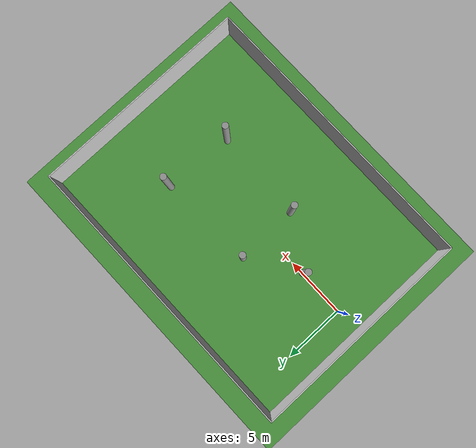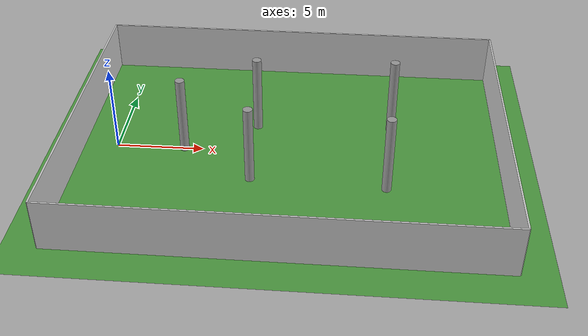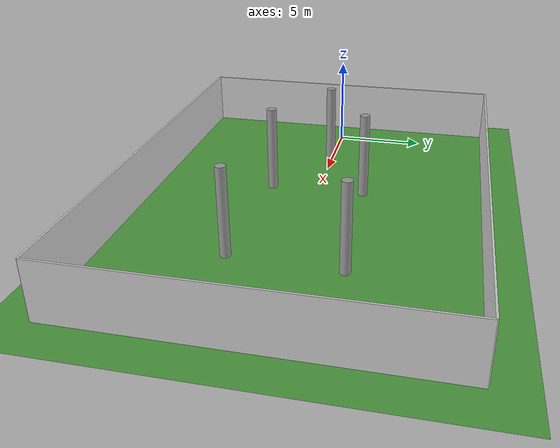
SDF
<sdf version="1.7">
 <world name="grass_enclosed_world">
  <light name="sun" type="directional">
   <pose>0 0 10 0 -0 0</pose>
   <diffuse>0.8 0.8 0.8 1</diffuse>
   <specular>0.2 0.2 0.2 1</specular>
   <attenuation>
    <range>1000</range>
    <constant>0.9</constant>
    <linear>0.01</linear>
    <quadratic>0.001</quadratic>
   </attenuation>
   <direction>-0.5 0.1 -0.9</direction>
   <spot><inner_angle>0</inner_angle><outer_angle>0</outer_angle><falloff>0</falloff></spot>
  </light>
  <model name="ground_plane">
   <static>1</static>
   <link name="link">
    <collision name="collision">
     <geometry><plane><normal>0 0 1</normal><size>50 50</size></plane></geometry>
     <surface><friction><ode><mu>100</mu><mu2>50</mu2></ode></friction></surface>
    </collision>
    <visual name="visual">
     <geometry><plane><normal>0 0 1</normal><size>50 50</size></plane></geometry>
     <material>
      <script><uri>file://media/materials/scripts/gazebo.material</uri><name>Gazebo/Grass</name></script>
     </material>
    </visual>
   </link>
  </model>
  <model name="wall_x_positive">
   <static>1</static>
   <pose>10 9 1.5 0 -0 0</pose>
   <link name="link">
    <collision name="collision"><geometry><box><size>24 0.1 3</size></box></geometry></collision>
    <visual name="visual">
     <geometry><box><size>24 0.1 3</size></box></geometry>
     <material><ambient>0.8 0.8 0.8 1</ambient></material>
    </visual>
   </link>
  </model>
  <model name="wall_x_negative">
   <static>1</static>
   <pose>10 -9 1.5 0 -0 0</pose>
   <link name="link">
    <collision name="collision"><geometry><box><size>24 0.1 3</size></box></geometry></collision>
    <visual name="visual">
     <geometry><box><size>24 0.1 3</size></box></geometry>
     <material><ambient>0.8 0.8 0.8 1</ambient></material>
    </visual>
   </link>
  </model>
  <model name="wall_y_positive">
   <static>1</static>
   <pose>22 0 1.5 0 -0 0</pose>
   <link name="link">
    <collision name="collision"><geometry><box><size>0.1 18 3</size></box></geometry></collision>
    <visual name="visual">
     <geometry><box><size>0.1 18 3</size></box></geometry>
     <material><ambient>0.8 0.8 0.8 1</ambient></material>
    </visual>
   </link>
  </model>
  <model name="wall_y_negative">
   <static>1</static>
   <pose>-2 0 1.5 0 -0 0</pose>
   <link name="link">
    <collision name="collision"><geometry><box><size>0.1 18 3</size></box></geometry></collision>
    <visual name="visual">
     <geometry><box><size>0.1 18 3</size></box></geometry>
     <material><ambient>0.8 0.8 0.8 1</ambient></material>
    </visual>
   </link>
  </model>
  <model name="oak_tree">
   <pose>6.13619 -4.17728 -2.27218e+06 0 -0 0</pose>
   <link name="link">
    <pose>6.13621 -4.17728 0 0 -0 0</pose>
    <inertial>
     <inertia><ixx>1</ixx><ixy>0</ixy><ixz>0</ixz><iyy>1</iyy><iyz>0</iyz><izz>1</izz></inertia>
     <mass>1</mass>
    </inertial>
    <velocity>0 0 0 0 -0 0</velocity>
    <acceleration>0 0 0 0 -0 0</acceleration>
    <wrench>0 0 0 0 -0 0</wrench>
   </link>
   <scale>1 1 1</scale>
  </model>
  <model name="pine_tree">
   <pose>3.69007 2.61013 -2.27218e+06 0 -0 0</pose>
   <link name="link">
    <pose>3.69007 2.61013 0 0 -0 0</pose>
    <inertial>
     <inertia><ixx>1</ixx><ixy>0</ixy><ixz>0</ixz><iyy>1</iyy><iyz>0</iyz><izz>1</izz></inertia>
     <mass>1</mass>
    </inertial>
    <velocity>0 0 0 0 -0 0</velocity>
    <acceleration>0 0 0 0 -0 0</acceleration>
    <wrench>0 0 0 0 -0 0</wrench>
   </link>
   <scale>1 1 1</scale>
  </model>
  <model name="pine_tree_0">
   <pose>5.15015 5.3415 -2.27218e+06 0 -0 0</pose>
   <link name="link">
    <pose>5.15015 5.3415 0 0 -0 0</pose>
    <inertial>
     <inertia><ixx>1</ixx><ixy>0</ixy><ixz>0</ixz><iyy>1</iyy><iyz>0</iyz><izz>1</izz></inertia>
     <mass>1</mass>
    </inertial>
    <velocity>0 0 0 0 -0 0</velocity>
    <acceleration>0 0 0 0 -0 0</acceleration>
    <wrench>0 0 0 0 -0 0</wrench>
   </link>
   <scale>1 1 1</scale>
  </model>
  <model name="pine_tree_1">
   <pose>8.01584 3.60971 -2.27218e+06 0 -0 0</pose>
   <link name="link">
    <pose>8.01586 3.60971 0 0 -0 0</pose>
    <inertial>
     <inertia><ixx>1</ixx><ixy>0</ixy><ixz>0</ixz><iyy>1</iyy><iyz>0</iyz><izz>1</izz></inertia>
     <mass>1</mass>
    </inertial>
    <velocity>0 0 0 0 -0 0</velocity>
    <acceleration>0 0 0 0 -0 0</acceleration>
    <wrench>0 0 0 0 -0 0</wrench>
   </link>
   <scale>1 1 1</scale>
  </model>
  <model name="pine_tree_2">
   <pose>9.61175 6.59911 -2.27218e+06 0 -0 0</pose>
   <link name="link">
    <pose>9.61175 6.59909 0 0 -0 0</pose>
    <inertial>
     <inertia><ixx>1</ixx><ixy>0</ixy><ixz>0</ixz><iyy>1</iyy><iyz>0</iyz><izz>1</izz></inertia>
     <mass>1</mass>
    </inertial>
    <velocity>0 0 0 0 -0 0</velocity>
    <acceleration>0 0 0 0 -0 0</acceleration>
    <wrench>0 0 0 0 -0 0</wrench>
   </link>
   <scale>1 1 1</scale>
  </model>
  <model name="pine_tree_3">
   <pose>10.2263 0.508351 -2.27218e+06 0 -0 0</pose>
   <link name="link">
    <pose>10.2263 0.508349 0 0 -0 0</pose>
    <inertial>
     <inertia><ixx>1</ixx><ixy>0</ixy><ixz>0</ixz><iyy>1</iyy><iyz>0</iyz><izz>1</izz></inertia>
     <mass>1</mass>
    </inertial>
    <velocity>0 0 0 0 -0 0</velocity>
    <acceleration>0 0 0 0 -0 0</acceleration>
    <wrench>0 0 0 0 -0 0</wrench>
   </link>
   <scale>1 1 1</scale>
  </model>
  <model name="pine_tree_4">
   <pose>12.4557 3.75801 -2.27218e+06 0 -0 0</pose>
   <link name="link">
    <pose>12.4557 3.75801 0 0 -0 0</pose>
    <inertial>
     <inertia><ixx>1</ixx><ixy>0</ixy><ixz>0</ixz><iyy>1</iyy><iyz>0</iyz><izz>1</izz></inertia>
     <mass>1</mass>
    </inertial>
    <velocity>0 0 0 0 -0 0</velocity>
    <acceleration>0 0 0 0 -0 0</acceleration>
    <wrench>0 0 0 0 -0 0</wrench>
   </link>
   <scale>1 1 1</scale>
  </model>
  <model name="pine_tree_5">
   <pose>16.6246 3.93043 -2.27218e+06 0 -0 0</pose>
   <link name="link">
    <pose>16.6246 3.93043 0 0 -0 0</pose>
    <inertial>
     <inertia><ixx>1</ixx><ixy>0</ixy><ixz>0</ixz><iyy>1</iyy><iyz>0</iyz><izz>1</izz></inertia>
     <mass>1</mass>
    </inertial>
    <velocity>0 0 0 0 -0 0</velocity>
    <acceleration>0 0 0 0 -0 0</acceleration>
    <wrench>0 0 0 0 -0 0</wrench>
   </link>
   <scale>1 1 1</scale>
  </model>
  <model name="thrift_shop">
   <pose>16.4126 -2.7605 -2.27218e+06 0 -0 0</pose>
   <link name="link">
    <pose>16.4126 -2.7605 0 0 -0 0</pose>
    <inertial>
     <inertia><ixx>1</ixx><ixy>0</ixy><ixz>0</ixz><iyy>1</iyy><iyz>0</iyz><izz>1</izz></inertia>
     <mass>1</mass>
    </inertial>
    <velocity>0 0 0 0 -0 0</velocity>
    <acceleration>0 0 0 0 -0 0</acceleration>
    <wrench>0 0 0 0 -0 0</wrench>
   </link>
   <scale>1 1 1</scale>
  </model>
  <physics type="ode">
   <max_step_size>0.001</max_step_size>
   <real_time_factor>1</real_time_factor>
   <real_time_update_rate>1000</real_time_update_rate>
   <gravity>0 0 -9.8</gravity>
  </physics>
  <gravity>0 0 -9.8</gravity>
  <magnetic_field>6e-06 2.3e-05 -4.2e-05</magnetic_field>
  <atmosphere type="adiabatic"/>
  <scene><ambient>0.4 0.4 0.4 1</ambient><background>0.7 0.7 0.7 1</background><shadows>1</shadows></scene>
  <spherical_coordinates>
   <surface_model>EARTH_WGS84</surface_model>
   <latitude_deg>0</latitude_deg>
   <longitude_deg>0</longitude_deg>
   <elevation>0</elevation>
   <heading_deg>0</heading_deg>
  </spherical_coordinates>
  <model name="cylinder_tree">
   <link name="link_0">
    <inertial>
     <mass>1.28436</mass>
     <inertia>
      <ixx>2.33029</ixx>
      <ixy>0</ixy>
      <ixz>0</ixz>
      <iyy>2.33029</iyy>
      <iyz>0</iyz>
      <izz>0.0444012</izz>
     </inertia>
    </inertial>
    <pose>-1e-06 3e-06 0 0 -0 0</pose>
    <visual name="visual">
     <geometry><cylinder><radius>0.262948</radius><length>4.64381</length></cylinder></geometry>
     <material>
      <lighting>1</lighting>
      <script><uri>file://media/materials/scripts/gazebo.material</uri><name>Gazebo/Grey</name></script>
      <shader type="pixel"/>
     </material>
    </visual>
    <collision name="collision">
     <geometry><cylinder><radius>0.262948</radius><length>4.64381</length></cylinder></geometry>
     <surface>
      <friction>
       <ode><mu>1</mu><mu2>1</mu2><fdir1>0 0 0</fdir1><slip1>0</slip1><slip2>0</slip2></ode>
       <torsional>
        <coefficient>1</coefficient>
        <patch_radius>0</patch_radius>
        <surface_radius>0</surface_radius>
        <use_patch_radius>1</use_patch_radius>
        <ode><slip>0</slip></ode>
       </torsional>
      </friction>
      <bounce><restitution_coefficient>0</restitution_coefficient><threshold>1e+06</threshold></bounce>
      <contact>
       <collide_without_contact>0</collide_without_contact>
       <collide_without_contact_bitmask>1</collide_without_contact_bitmask>
       <collide_bitmask>1</collide_bitmask>
       <ode>
        <soft_cfm>0</soft_cfm>
        <soft_erp>0.2</soft_erp>
        <kp>1e+13</kp>
        <kd>1</kd>
        <max_vel>0.01</max_vel>
        <min_depth>0</min_depth>
       </ode>
       <bullet>
        <split_impulse>1</split_impulse>
        <split_impulse_penetration_threshold>-0.01</split_impulse_penetration_threshold>
        <soft_cfm>0</soft_cfm>
        <soft_erp>0.2</soft_erp>
        <kp>1e+13</kp>
        <kd>1</kd>
       </bullet>
      </contact>
     </surface>
    </collision>
   </link>
   <static>0</static>
   <pose>3.9382 -0.033957 2.3219 0 0 -8.2e-05</pose>
  </model>
  <model name="cylinder_tree_0">
   <link name="link_0">
    <inertial>
     <mass>1.28436</mass>
     <inertia>
      <ixx>2.33029</ixx>
      <ixy>0</ixy>
      <ixz>0</ixz>
      <iyy>2.33029</iyy>
      <iyz>0</iyz>
      <izz>0.0444012</izz>
     </inertia>
    </inertial>
    <pose>-1e-06 3e-06 0 0 -0 0</pose>
    <visual name="visual">
     <geometry><cylinder><radius>0.262948</radius><length>4.64381</length></cylinder></geometry>
     <material>
      <lighting>1</lighting>
      <script><uri>file://media/materials/scripts/gazebo.material</uri><name>Gazebo/Grey</name></script>
      <shader type="pixel"/>
     </material>
    </visual>
    <collision name="collision">
     <geometry><cylinder><radius>0.262948</radius><length>4.64381</length></cylinder></geometry>
     <surface>
      <friction>
       <ode><mu>1</mu><mu2>1</mu2><fdir1>0 0 0</fdir1><slip1>0</slip1><slip2>0</slip2></ode>
       <torsional>
        <coefficient>1</coefficient>
        <patch_radius>0</patch_radius>
        <surface_radius>0</surface_radius>
        <use_patch_radius>1</use_patch_radius>
        <ode><slip>0</slip></ode>
       </torsional>
      </friction>
      <bounce><restitution_coefficient>0</restitution_coefficient><threshold>1e+06</threshold></bounce>
      <contact>
       <collide_without_contact>0</collide_without_contact>
       <collide_without_contact_bitmask>1</collide_without_contact_bitmask>
       <collide_bitmask>1</collide_bitmask>
       <ode>
        <soft_cfm>0</soft_cfm>
        <soft_erp>0.2</soft_erp>
        <kp>1e+13</kp>
        <kd>1</kd>
        <max_vel>0.01</max_vel>
        <min_depth>0</min_depth>
       </ode>
       <bullet>
        <split_impulse>1</split_impulse>
        <split_impulse_penetration_threshold>-0.01</split_impulse_penetration_threshold>
        <soft_cfm>0</soft_cfm>
        <soft_erp>0.2</soft_erp>
        <kp>1e+13</kp>
        <kd>1</kd>
       </bullet>
      </contact>
     </surface>
    </collision>
   </link>
   <static>0</static>
   <pose>7.94523 2.52234 2.3219 0 -0 -1.4e-05</pose>
  </model>
  <model name="cylinder_tree_1">
   <link name="link_0">
    <inertial>
     <mass>1.28436</mass>
     <inertia>
      <ixx>2.33029</ixx>
      <ixy>0</ixy>
      <ixz>0</ixz>
      <iyy>2.33029</iyy>
      <iyz>0</iyz>
      <izz>0.0444012</izz>
     </inertia>
    </inertial>
    <pose>-1e-06 3e-06 0 0 -0 0</pose>
    <visual name="visual">
     <geometry><cylinder><radius>0.262948</radius><length>4.64381</length></cylinder></geometry>
     <material>
      <lighting>1</lighting>
      <script><uri>file://media/materials/scripts/gazebo.material</uri><name>Gazebo/Grey</name></script>
      <shader type="pixel"/>
     </material>
    </visual>
    <collision name="collision">
     <geometry><cylinder><radius>0.262948</radius><length>4.64381</length></cylinder></geometry>
     <surface>
      <friction>
       <ode><mu>1</mu><mu2>1</mu2><fdir1>0 0 0</fdir1><slip1>0</slip1><slip2>0</slip2></ode>
       <torsional>
        <coefficient>1</coefficient>
        <patch_radius>0</patch_radius>
        <surface_radius>0</surface_radius>
        <use_patch_radius>1</use_patch_radius>
        <ode><slip>0</slip></ode>
       </torsional>
      </friction>
      <bounce><restitution_coefficient>0</restitution_coefficient><threshold>1e+06</threshold></bounce>
      <contact>
       <collide_without_contact>0</collide_without_contact>
       <collide_without_contact_bitmask>1</collide_without_contact_bitmask>
       <collide_bitmask>1</collide_bitmask>
       <ode>
        <soft_cfm>0</soft_cfm>
        <soft_erp>0.2</soft_erp>
        <kp>1e+13</kp>
        <kd>1</kd>
        <max_vel>0.01</max_vel>
        <min_depth>0</min_depth>
       </ode>
       <bullet>
        <split_impulse>1</split_impulse>
        <split_impulse_penetration_threshold>-0.01</split_impulse_penetration_threshold>
        <soft_cfm>0</soft_cfm>
        <soft_erp>0.2</soft_erp>
        <kp>1e+13</kp>
        <kd>1</kd>
       </bullet>
      </contact>
     </surface>
    </collision>
   </link>
   <static>0</static>
   <pose>8.02362 -2.56695 2.3219 0 0 -1.3e-05</pose>
  </model>
  <model name="cylinder_tree_2">
   <link name="link_0">
    <inertial>
     <mass>1.28436</mass>
     <inertia>
      <ixx>2.33029</ixx>
      <ixy>0</ixy>
      <ixz>0</ixz>
      <iyy>2.33029</iyy>
      <iyz>0</iyz>
      <izz>0.0444012</izz>
     </inertia>
    </inertial>
    <pose>-1e-06 3e-06 0 0 -0 0</pose>
    <visual name="visual">
     <geometry><cylinder><radius>0.262948</radius><length>4.64381</length></cylinder></geometry>
     <material>
      <lighting>1</lighting>
      <script><uri>file://media/materials/scripts/gazebo.material</uri><name>Gazebo/Grey</name></script>
      <shader type="pixel"/>
     </material>
    </visual>
    <collision name="collision">
     <geometry><cylinder><radius>0.262948</radius><length>4.64381</length></cylinder></geometry>
     <surface>
      <friction>
       <ode><mu>1</mu><mu2>1</mu2><fdir1>0 0 0</fdir1><slip1>0</slip1><slip2>0</slip2></ode>
       <torsional>
        <coefficient>1</coefficient>
        <patch_radius>0</patch_radius>
        <surface_radius>0</surface_radius>
        <use_patch_radius>1</use_patch_radius>
        <ode><slip>0</slip></ode>
       </torsional>
      </friction>
      <bounce><restitution_coefficient>0</restitution_coefficient><threshold>1e+06</threshold></bounce>
      <contact>
       <collide_without_contact>0</collide_without_contact>
       <collide_without_contact_bitmask>1</collide_without_contact_bitmask>
       <collide_bitmask>1</collide_bitmask>
       <ode>
        <soft_cfm>0</soft_cfm>
        <soft_erp>0.2</soft_erp>
        <kp>1e+13</kp>
        <kd>1</kd>
        <max_vel>0.01</max_vel>
        <min_depth>0</min_depth>
       </ode>
       <bullet>
        <split_impulse>1</split_impulse>
        <split_impulse_penetration_threshold>-0.01</split_impulse_penetration_threshold>
        <soft_cfm>0</soft_cfm>
        <soft_erp>0.2</soft_erp>
        <kp>1e+13</kp>
        <kd>1</kd>
       </bullet>
      </contact>
     </surface>
    </collision>
   </link>
   <static>0</static>
   <pose>15.5831 -2.88559 2.3219 0 -0 -1.3e-05</pose>
  </model>
  <model name="cylinder_tree_3">
   <link name="link_0">
    <inertial>
     <mass>1.28436</mass>
     <inertia>
      <ixx>2.33029</ixx>
      <ixy>0</ixy>
      <ixz>0</ixz>
      <iyy>2.33029</iyy>
      <iyz>0</iyz>
      <izz>0.0444012</izz>
     </inertia>
    </inertial>
    <pose>-1e-06 3e-06 0 0 -0 0</pose>
    <visual name="visual">
     <geometry><cylinder><radius>0.262948</radius><length>4.64381</length></cylinder></geometry>
     <material>
      <lighting>1</lighting>
      <script><uri>file://media/materials/scripts/gazebo.material</uri><name>Gazebo/Grey</name></script>
      <shader type="pixel"/>
     </material>
    </visual>
    <collision name="collision">
     <geometry><cylinder><radius>0.262948</radius><length>4.64381</length></cylinder></geometry>
     <surface>
      <friction>
       <ode><mu>1</mu><mu2>1</mu2><fdir1>0 0 0</fdir1><slip1>0</slip1><slip2>0</slip2></ode>
       <torsional>
        <coefficient>1</coefficient>
        <patch_radius>0</patch_radius>
        <surface_radius>0</surface_radius>
        <use_patch_radius>1</use_patch_radius>
        <ode><slip>0</slip></ode>
       </torsional>
      </friction>
      <bounce><restitution_coefficient>0</restitution_coefficient><threshold>1e+06</threshold></bounce>
      <contact>
       <collide_without_contact>0</collide_without_contact>
       <collide_without_contact_bitmask>1</collide_without_contact_bitmask>
       <collide_bitmask>1</collide_bitmask>
       <ode>
        <soft_cfm>0</soft_cfm>
        <soft_erp>0.2</soft_erp>
        <kp>1e+13</kp>
        <kd>1</kd>
        <max_vel>0.01</max_vel>
        <min_depth>0</min_depth>
       </ode>
       <bullet>
        <split_impulse>1</split_impulse>
        <split_impulse_penetration_threshold>-0.01</split_impulse_penetration_threshold>
        <soft_cfm>0</soft_cfm>
        <soft_erp>0.2</soft_erp>
        <kp>1e+13</kp>
        <kd>1</kd>
       </bullet>
      </contact>
     </surface>
    </collision>
   </link>
   <static>0</static>
   <pose>15.8536 2.86335 2.3219 0 0 -1.3e-05</pose>
  </model>
 </world>
</sdf>
